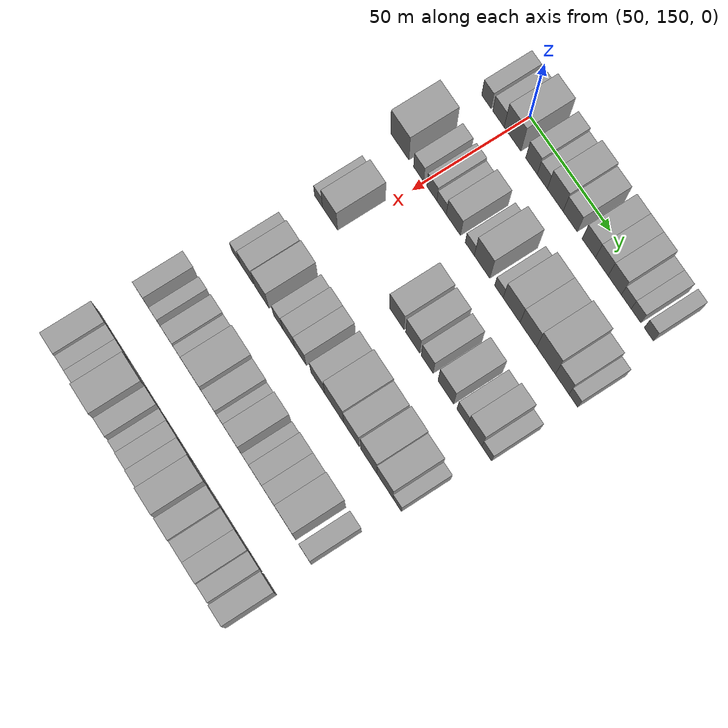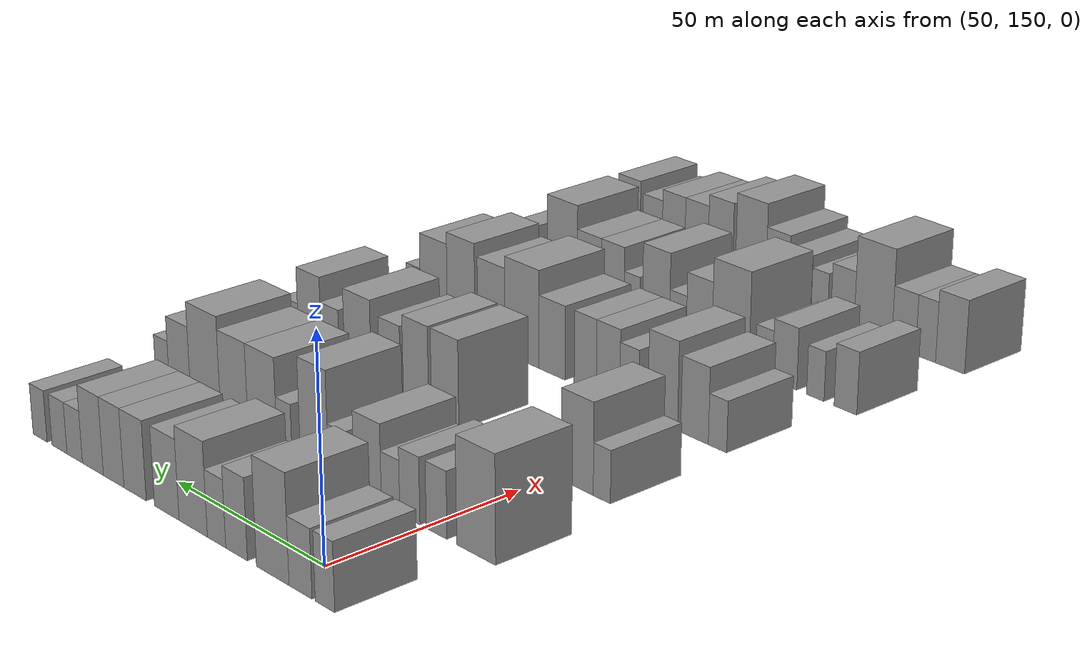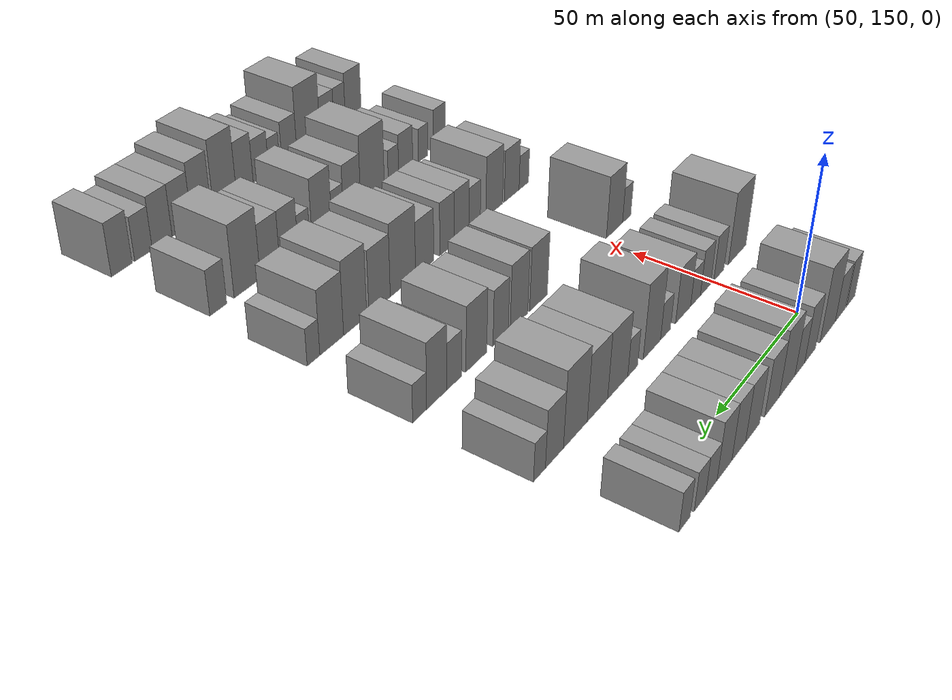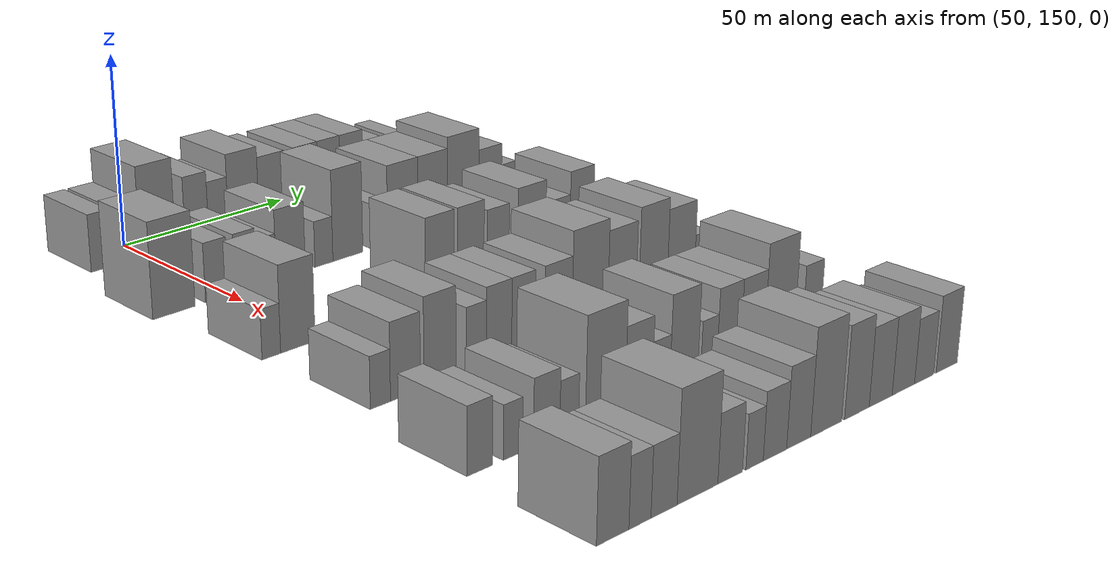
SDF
<sdf version="1.6">
 <world name="default">
  <model name="building_68">
   <static>1</static>
   <pose>50.0000 136.8755 0 0.000000 0.000000 0.000000</pose>
   <link name="link">
    <pose>0 0 7.50 0 0 0</pose>
    <collision name="collision"><geometry><box><size>20.0000 6.0686 15.0000</size></box></geometry></collision>
    <visual name="visual">
     <cast_shadows>0</cast_shadows>
     <geometry><box><size>20.0000 6.0686 15.0000</size></box></geometry>
     <material>
      <script>
       <uri>model://grey_wall/materials/scripts</uri>
       <uri>model://grey_wall/materials/textures</uri>
       <name>vrc/grey_wall</name>
      </script>
     </material>
    </visual>
   </link>
  </model>
  <model name="building_69">
   <static>1</static>
   <pose>50.0000 144.5583 0 0.000000 0.000000 0.000000</pose>
   <link name="link">
    <pose>0 0 7.50 0 0 0</pose>
    <collision name="collision"><geometry><box><size>20.0000 7.2969 15.0000</size></box></geometry></collision>
    <visual name="visual">
     <cast_shadows>0</cast_shadows>
     <geometry><box><size>20.0000 7.2969 15.0000</size></box></geometry>
     <material>
      <script>
       <uri>model://grey_wall/materials/scripts</uri>
       <uri>model://grey_wall/materials/textures</uri>
       <name>vrc/grey_wall</name>
      </script>
     </material>
    </visual>
   </link>
  </model>
  <model name="building_70">
   <static>1</static>
   <pose>50.0000 153.5086 0 0.000000 0.000000 0.000000</pose>
   <link name="link">
    <pose>0 0 12.00 0 0 0</pose>
    <collision name="collision"><geometry><box><size>20.0000 10.6038 24.0000</size></box></geometry></collision>
    <visual name="visual">
     <cast_shadows>0</cast_shadows>
     <geometry><box><size>20.0000 10.6038 24.0000</size></box></geometry>
     <material>
      <script>
       <uri>model://grey_wall/materials/scripts</uri>
       <uri>model://grey_wall/materials/textures</uri>
       <name>vrc/grey_wall</name>
      </script>
     </material>
    </visual>
   </link>
  </model>
  <model name="building_71">
   <static>1</static>
   <pose>50.0000 165.4371 0 0.000000 0.000000 0.000000</pose>
   <link name="link">
    <pose>0 0 9.00 0 0 0</pose>
    <collision name="collision"><geometry><box><size>20.0000 7.2532 18.0000</size></box></geometry></collision>
    <visual name="visual">
     <cast_shadows>0</cast_shadows>
     <geometry><box><size>20.0000 7.2532 18.0000</size></box></geometry>
     <material>
      <script>
       <uri>model://grey_wall/materials/scripts</uri>
       <uri>model://grey_wall/materials/textures</uri>
       <name>vrc/grey_wall</name>
      </script>
     </material>
    </visual>
   </link>
  </model>
  <model name="building_72">
   <static>1</static>
   <pose>50.0000 172.2063 0 0.000000 0.000000 0.000000</pose>
   <link name="link">
    <pose>0 0 7.50 0 0 0</pose>
    <collision name="collision"><geometry><box><size>20.0000 6.2853 15.0000</size></box></geometry></collision>
    <visual name="visual">
     <cast_shadows>0</cast_shadows>
     <geometry><box><size>20.0000 6.2853 15.0000</size></box></geometry>
     <material>
      <script>
       <uri>model://grey_wall/materials/scripts</uri>
       <uri>model://grey_wall/materials/textures</uri>
       <name>vrc/grey_wall</name>
      </script>
     </material>
    </visual>
   </link>
  </model>
  <model name="building_73">
   <static>1</static>
   <pose>50.0000 180.2846 0 0.000000 0.000000 0.000000</pose>
   <link name="link">
    <pose>0 0 10.50 0 0 0</pose>
    <collision name="collision"><geometry><box><size>20.0000 9.8712 21.0000</size></box></geometry></collision>
    <visual name="visual">
     <cast_shadows>0</cast_shadows>
     <geometry><box><size>20.0000 9.8712 21.0000</size></box></geometry>
     <material>
      <script>
       <uri>model://grey_wall/materials/scripts</uri>
       <uri>model://grey_wall/materials/textures</uri>
       <name>vrc/grey_wall</name>
      </script>
     </material>
    </visual>
   </link>
  </model>
  <model name="building_74">
   <static>1</static>
   <pose>50.0000 189.6203 0 0.000000 0.000000 0.000000</pose>
   <link name="link">
    <pose>0 0 9.00 0 0 0</pose>
    <collision name="collision"><geometry><box><size>20.0000 8.8002 18.0000</size></box></geometry></collision>
    <visual name="visual">
     <cast_shadows>0</cast_shadows>
     <geometry><box><size>20.0000 8.8002 18.0000</size></box></geometry>
     <material>
      <script>
       <uri>model://grey_wall/materials/scripts</uri>
       <uri>model://grey_wall/materials/textures</uri>
       <name>vrc/grey_wall</name>
      </script>
     </material>
    </visual>
   </link>
  </model>
  <model name="building_75">
   <static>1</static>
   <pose>50.0000 201.1195 0 0.000000 0.000000 0.000000</pose>
   <link name="link">
    <pose>0 0 9.00 0 0 0</pose>
    <collision name="collision"><geometry><box><size>20.0000 8.1983 18.0000</size></box></geometry></collision>
    <visual name="visual">
     <cast_shadows>0</cast_shadows>
     <geometry><box><size>20.0000 8.1983 18.0000</size></box></geometry>
     <material>
      <script>
       <uri>model://grey_wall/materials/scripts</uri>
       <uri>model://grey_wall/materials/textures</uri>
       <name>vrc/grey_wall</name>
      </script>
     </material>
    </visual>
   </link>
  </model>
  <model name="building_76">
   <static>1</static>
   <pose>50.0000 209.0803 0 0.000000 0.000000 0.000000</pose>
   <link name="link">
    <pose>0 0 9.00 0 0 0</pose>
    <collision name="collision"><geometry><box><size>20.0000 7.7233 18.0000</size></box></geometry></collision>
    <visual name="visual">
     <cast_shadows>0</cast_shadows>
     <geometry><box><size>20.0000 7.7233 18.0000</size></box></geometry>
     <material>
      <script>
       <uri>model://grey_wall/materials/scripts</uri>
       <uri>model://grey_wall/materials/textures</uri>
       <name>vrc/grey_wall</name>
      </script>
     </material>
    </visual>
   </link>
  </model>
  <model name="building_77">
   <static>1</static>
   <pose>50.0000 216.9637 0 0.000000 0.000000 0.000000</pose>
   <link name="link">
    <pose>0 0 9.00 0 0 0</pose>
    <collision name="collision"><geometry><box><size>20.0000 8.0435 18.0000</size></box></geometry></collision>
    <visual name="visual">
     <cast_shadows>0</cast_shadows>
     <geometry><box><size>20.0000 8.0435 18.0000</size></box></geometry>
     <material>
      <script>
       <uri>model://grey_wall/materials/scripts</uri>
       <uri>model://grey_wall/materials/textures</uri>
       <name>vrc/grey_wall</name>
      </script>
     </material>
    </visual>
   </link>
  </model>
  <model name="building_78">
   <static>1</static>
   <pose>50.0000 223.9829 0 0.000000 0.000000 0.000000</pose>
   <link name="link">
    <pose>0 0 6.00 0 0 0</pose>
    <collision name="collision"><geometry><box><size>20.0000 5.9948 12.0000</size></box></geometry></collision>
    <visual name="visual">
     <cast_shadows>0</cast_shadows>
     <geometry><box><size>20.0000 5.9948 12.0000</size></box></geometry>
     <material>
      <script>
       <uri>model://grey_wall/materials/scripts</uri>
       <uri>model://grey_wall/materials/textures</uri>
       <name>vrc/grey_wall</name>
      </script>
     </material>
    </visual>
   </link>
  </model>
  <model name="building_79">
   <static>1</static>
   <pose>50.0000 229.9279 0 0.000000 0.000000 0.000000</pose>
   <link name="link">
    <pose>0 0 6.00 0 0 0</pose>
    <collision name="collision"><geometry><box><size>20.0000 5.8952 12.0000</size></box></geometry></collision>
    <visual name="visual">
     <cast_shadows>0</cast_shadows>
     <geometry><box><size>20.0000 5.8952 12.0000</size></box></geometry>
     <material>
      <script>
       <uri>model://grey_wall/materials/scripts</uri>
       <uri>model://grey_wall/materials/textures</uri>
       <name>vrc/grey_wall</name>
      </script>
     </material>
    </visual>
   </link>
  </model>
  <model name="building_80">
   <static>1</static>
   <pose>50.0000 237.6682 0 0.000000 0.000000 0.000000</pose>
   <link name="link">
    <pose>0 0 6.00 0 0 0</pose>
    <collision name="collision"><geometry><box><size>20.0000 5.5854 12.0000</size></box></geometry></collision>
    <visual name="visual">
     <cast_shadows>0</cast_shadows>
     <geometry><box><size>20.0000 5.5854 12.0000</size></box></geometry>
     <material>
      <script>
       <uri>model://grey_wall/materials/scripts</uri>
       <uri>model://grey_wall/materials/textures</uri>
       <name>vrc/grey_wall</name>
      </script>
     </material>
    </visual>
   </link>
  </model>
  <model name="building_193">
   <static>1</static>
   <pose>85.0000 134.0909 0 0.000000 0.000000 0.000000</pose>
   <link name="link">
    <pose>0 0 12.00 0 0 0</pose>
    <collision name="collision"><geometry><box><size>20.0000 11.8184 24.0000</size></box></geometry></collision>
    <visual name="visual">
     <cast_shadows>0</cast_shadows>
     <geometry><box><size>20.0000 11.8184 24.0000</size></box></geometry>
     <material>
      <script>
       <uri>model://grey_wall/materials/scripts</uri>
       <uri>model://grey_wall/materials/textures</uri>
       <name>vrc/grey_wall</name>
      </script>
     </material>
    </visual>
   </link>
  </model>
  <model name="building_194">
   <static>1</static>
   <pose>85.0000 146.2504 0 0.000000 0.000000 0.000000</pose>
   <link name="link">
    <pose>0 0 7.50 0 0 0</pose>
    <collision name="collision"><geometry><box><size>20.0000 6.5005 15.0000</size></box></geometry></collision>
    <visual name="visual">
     <cast_shadows>0</cast_shadows>
     <geometry><box><size>20.0000 6.5005 15.0000</size></box></geometry>
     <material>
      <script>
       <uri>model://grey_wall/materials/scripts</uri>
       <uri>model://grey_wall/materials/textures</uri>
       <name>vrc/grey_wall</name>
      </script>
     </material>
    </visual>
   </link>
  </model>
  <model name="building_195">
   <static>1</static>
   <pose>85.0000 154.7199 0 0.000000 0.000000 0.000000</pose>
   <link name="link">
    <pose>0 0 7.50 0 0 0</pose>
    <collision name="collision"><geometry><box><size>20.0000 6.4386 15.0000</size></box></geometry></collision>
    <visual name="visual">
     <cast_shadows>0</cast_shadows>
     <geometry><box><size>20.0000 6.4386 15.0000</size></box></geometry>
     <material>
      <script>
       <uri>model://grey_wall/materials/scripts</uri>
       <uri>model://grey_wall/materials/textures</uri>
       <name>vrc/grey_wall</name>
      </script>
     </material>
    </visual>
   </link>
  </model>
  <model name="building_196">
   <static>1</static>
   <pose>85.0000 160.9288 0 0.000000 0.000000 0.000000</pose>
   <link name="link">
    <pose>0 0 6.00 0 0 0</pose>
    <collision name="collision"><geometry><box><size>20.0000 5.9792 12.0000</size></box></geometry></collision>
    <visual name="visual">
     <cast_shadows>0</cast_shadows>
     <geometry><box><size>20.0000 5.9792 12.0000</size></box></geometry>
     <material>
      <script>
       <uri>model://grey_wall/materials/scripts</uri>
       <uri>model://grey_wall/materials/textures</uri>
       <name>vrc/grey_wall</name>
      </script>
     </material>
    </visual>
   </link>
  </model>
  <model name="building_197">
   <static>1</static>
   <pose>85.0000 168.4121 0 0.000000 0.000000 0.000000</pose>
   <link name="link">
    <pose>0 0 9.00 0 0 0</pose>
    <collision name="collision"><geometry><box><size>20.0000 8.9873 18.0000</size></box></geometry></collision>
    <visual name="visual">
     <cast_shadows>0</cast_shadows>
     <geometry><box><size>20.0000 8.9873 18.0000</size></box></geometry>
     <material>
      <script>
       <uri>model://grey_wall/materials/scripts</uri>
       <uri>model://grey_wall/materials/textures</uri>
       <name>vrc/grey_wall</name>
      </script>
     </material>
    </visual>
   </link>
  </model>
  <model name="building_198">
   <static>1</static>
   <pose>85.0000 178.7618 0 0.000000 0.000000 0.000000</pose>
   <link name="link">
    <pose>0 0 6.00 0 0 0</pose>
    <collision name="collision"><geometry><box><size>20.0000 5.7120 12.0000</size></box></geometry></collision>
    <visual name="visual">
     <cast_shadows>0</cast_shadows>
     <geometry><box><size>20.0000 5.7120 12.0000</size></box></geometry>
     <material>
      <script>
       <uri>model://grey_wall/materials/scripts</uri>
       <uri>model://grey_wall/materials/textures</uri>
       <name>vrc/grey_wall</name>
      </script>
     </material>
    </visual>
   </link>
  </model>
  <model name="building_199">
   <static>1</static>
   <pose>85.0000 186.4769 0 0.000000 0.000000 0.000000</pose>
   <link name="link">
    <pose>0 0 12.00 0 0 0</pose>
    <collision name="collision"><geometry><box><size>20.0000 9.7182 24.0000</size></box></geometry></collision>
    <visual name="visual">
     <cast_shadows>0</cast_shadows>
     <geometry><box><size>20.0000 9.7182 24.0000</size></box></geometry>
     <material>
      <script>
       <uri>model://grey_wall/materials/scripts</uri>
       <uri>model://grey_wall/materials/textures</uri>
       <name>vrc/grey_wall</name>
      </script>
     </material>
    </visual>
   </link>
  </model>
  <model name="building_200">
   <static>1</static>
   <pose>85.0000 196.9893 0 0.000000 0.000000 0.000000</pose>
   <link name="link">
    <pose>0 0 6.00 0 0 0</pose>
    <collision name="collision"><geometry><box><size>20.0000 5.3066 12.0000</size></box></geometry></collision>
    <visual name="visual">
     <cast_shadows>0</cast_shadows>
     <geometry><box><size>20.0000 5.3066 12.0000</size></box></geometry>
     <material>
      <script>
       <uri>model://grey_wall/materials/scripts</uri>
       <uri>model://grey_wall/materials/textures</uri>
       <name>vrc/grey_wall</name>
      </script>
     </material>
    </visual>
   </link>
  </model>
  <model name="building_201">
   <static>1</static>
   <pose>85.0000 204.8769 0 0.000000 0.000000 0.000000</pose>
   <link name="link">
    <pose>0 0 10.50 0 0 0</pose>
    <collision name="collision"><geometry><box><size>20.0000 10.4686 21.0000</size></box></geometry></collision>
    <visual name="visual">
     <cast_shadows>0</cast_shadows>
     <geometry><box><size>20.0000 10.4686 21.0000</size></box></geometry>
     <material>
      <script>
       <uri>model://grey_wall/materials/scripts</uri>
       <uri>model://grey_wall/materials/textures</uri>
       <name>vrc/grey_wall</name>
      </script>
     </material>
    </visual>
   </link>
  </model>
  <model name="building_202">
   <static>1</static>
   <pose>85.0000 215.2196 0 0.000000 0.000000 0.000000</pose>
   <link name="link">
    <pose>0 0 10.50 0 0 0</pose>
    <collision name="collision"><geometry><box><size>20.0000 10.2167 21.0000</size></box></geometry></collision>
    <visual name="visual">
     <cast_shadows>0</cast_shadows>
     <geometry><box><size>20.0000 10.2167 21.0000</size></box></geometry>
     <material>
      <script>
       <uri>model://grey_wall/materials/scripts</uri>
       <uri>model://grey_wall/materials/textures</uri>
       <name>vrc/grey_wall</name>
      </script>
     </material>
    </visual>
   </link>
  </model>
  <model name="building_203">
   <static>1</static>
   <pose>85.0000 226.0204 0 0.000000 0.000000 0.000000</pose>
   <link name="link">
    <pose>0 0 12.00 0 0 0</pose>
    <collision name="collision"><geometry><box><size>20.0000 11.3850 24.0000</size></box></geometry></collision>
    <visual name="visual">
     <cast_shadows>0</cast_shadows>
     <geometry><box><size>20.0000 11.3850 24.0000</size></box></geometry>
     <material>
      <script>
       <uri>model://grey_wall/materials/scripts</uri>
       <uri>model://grey_wall/materials/textures</uri>
       <name>vrc/grey_wall</name>
      </script>
     </material>
    </visual>
   </link>
  </model>
  <model name="building_204">
   <static>1</static>
   <pose>85.0000 235.8639 0 0.000000 0.000000 0.000000</pose>
   <link name="link">
    <pose>0 0 9.00 0 0 0</pose>
    <collision name="collision"><geometry><box><size>20.0000 8.3018 18.0000</size></box></geometry></collision>
    <visual name="visual">
     <cast_shadows>0</cast_shadows>
     <geometry><box><size>20.0000 8.3018 18.0000</size></box></geometry>
     <material>
      <script>
       <uri>model://grey_wall/materials/scripts</uri>
       <uri>model://grey_wall/materials/textures</uri>
       <name>vrc/grey_wall</name>
      </script>
     </material>
    </visual>
   </link>
  </model>
  <model name="building_205">
   <static>1</static>
   <pose>85.0000 242.6818 0 0.000000 0.000000 0.000000</pose>
   <link name="link">
    <pose>0 0 6.00 0 0 0</pose>
    <collision name="collision"><geometry><box><size>20.0000 5.3340 12.0000</size></box></geometry></collision>
    <visual name="visual">
     <cast_shadows>0</cast_shadows>
     <geometry><box><size>20.0000 5.3340 12.0000</size></box></geometry>
     <material>
      <script>
       <uri>model://grey_wall/materials/scripts</uri>
       <uri>model://grey_wall/materials/textures</uri>
       <name>vrc/grey_wall</name>
      </script>
     </material>
    </visual>
   </link>
  </model>
  <model name="building_317">
   <static>1</static>
   <pose>120.0000 135.6257 0 0.000000 0.000000 0.000000</pose>
   <link name="link">
    <pose>0 0 6.00 0 0 0</pose>
    <collision name="collision"><geometry><box><size>20.0000 5.1600 12.0000</size></box></geometry></collision>
    <visual name="visual">
     <cast_shadows>0</cast_shadows>
     <geometry><box><size>20.0000 5.1600 12.0000</size></box></geometry>
     <material>
      <script>
       <uri>model://grey_wall/materials/scripts</uri>
       <uri>model://grey_wall/materials/textures</uri>
       <name>vrc/grey_wall</name>
      </script>
     </material>
    </visual>
   </link>
  </model>
  <model name="building_318">
   <static>1</static>
   <pose>120.0000 143.0825 0 0.000000 0.000000 0.000000</pose>
   <link name="link">
    <pose>0 0 10.50 0 0 0</pose>
    <collision name="collision"><geometry><box><size>20.0000 9.7536 21.0000</size></box></geometry></collision>
    <visual name="visual">
     <cast_shadows>0</cast_shadows>
     <geometry><box><size>20.0000 9.7536 21.0000</size></box></geometry>
     <material>
      <script>
       <uri>model://grey_wall/materials/scripts</uri>
       <uri>model://grey_wall/materials/textures</uri>
       <name>vrc/grey_wall</name>
      </script>
     </material>
    </visual>
   </link>
  </model>
  <model name="building_319">
   <static>1</static>
   <pose>120.0000 185.8170 0 0.000000 0.000000 0.000000</pose>
   <link name="link">
    <pose>0 0 10.50 0 0 0</pose>
    <collision name="collision"><geometry><box><size>20.0000 9.2385 21.0000</size></box></geometry></collision>
    <visual name="visual">
     <cast_shadows>0</cast_shadows>
     <geometry><box><size>20.0000 9.2385 21.0000</size></box></geometry>
     <material>
      <script>
       <uri>model://grey_wall/materials/scripts</uri>
       <uri>model://grey_wall/materials/textures</uri>
       <name>vrc/grey_wall</name>
      </script>
     </material>
    </visual>
   </link>
  </model>
  <model name="building_320">
   <static>1</static>
   <pose>120.0000 195.8365 0 0.000000 0.000000 0.000000</pose>
   <link name="link">
    <pose>0 0 10.50 0 0 0</pose>
    <collision name="collision"><geometry><box><size>20.0000 8.8005 21.0000</size></box></geometry></collision>
    <visual name="visual">
     <cast_shadows>0</cast_shadows>
     <geometry><box><size>20.0000 8.8005 21.0000</size></box></geometry>
     <material>
      <script>
       <uri>model://grey_wall/materials/scripts</uri>
       <uri>model://grey_wall/materials/textures</uri>
       <name>vrc/grey_wall</name>
      </script>
     </material>
    </visual>
   </link>
  </model>
  <model name="building_321">
   <static>1</static>
   <pose>120.0000 204.9454 0 0.000000 0.000000 0.000000</pose>
   <link name="link">
    <pose>0 0 9.00 0 0 0</pose>
    <collision name="collision"><geometry><box><size>20.0000 7.4174 18.0000</size></box></geometry></collision>
    <visual name="visual">
     <cast_shadows>0</cast_shadows>
     <geometry><box><size>20.0000 7.4174 18.0000</size></box></geometry>
     <material>
      <script>
       <uri>model://grey_wall/materials/scripts</uri>
       <uri>model://grey_wall/materials/textures</uri>
       <name>vrc/grey_wall</name>
      </script>
     </material>
    </visual>
   </link>
  </model>
  <model name="building_322">
   <static>1</static>
   <pose>120.0000 216.5211 0 0.000000 0.000000 0.000000</pose>
   <link name="link">
    <pose>0 0 10.50 0 0 0</pose>
    <collision name="collision"><geometry><box><size>20.0000 9.7340 21.0000</size></box></geometry></collision>
    <visual name="visual">
     <cast_shadows>0</cast_shadows>
     <geometry><box><size>20.0000 9.7340 21.0000</size></box></geometry>
     <material>
      <script>
       <uri>model://grey_wall/materials/scripts</uri>
       <uri>model://grey_wall/materials/textures</uri>
       <name>vrc/grey_wall</name>
      </script>
     </material>
    </visual>
   </link>
  </model>
  <model name="building_323">
   <static>1</static>
   <pose>120.0000 226.7242 0 0.000000 0.000000 0.000000</pose>
   <link name="link">
    <pose>0 0 7.50 0 0 0</pose>
    <collision name="collision"><geometry><box><size>20.0000 6.6721 15.0000</size></box></geometry></collision>
    <visual name="visual">
     <cast_shadows>0</cast_shadows>
     <geometry><box><size>20.0000 6.6721 15.0000</size></box></geometry>
     <material>
      <script>
       <uri>model://grey_wall/materials/scripts</uri>
       <uri>model://grey_wall/materials/textures</uri>
       <name>vrc/grey_wall</name>
      </script>
     </material>
    </visual>
   </link>
  </model>
  <model name="building_324">
   <static>1</static>
   <pose>120.0000 234.4064 0 0.000000 0.000000 0.000000</pose>
   <link name="link">
    <pose>0 0 10.50 0 0 0</pose>
    <collision name="collision"><geometry><box><size>20.0000 8.6924 21.0000</size></box></geometry></collision>
    <visual name="visual">
     <cast_shadows>0</cast_shadows>
     <geometry><box><size>20.0000 8.6924 21.0000</size></box></geometry>
     <material>
      <script>
       <uri>model://grey_wall/materials/scripts</uri>
       <uri>model://grey_wall/materials/textures</uri>
       <name>vrc/grey_wall</name>
      </script>
     </material>
    </visual>
   </link>
  </model>
  <model name="building_325">
   <static>1</static>
   <pose>120.0000 241.7176 0 0.000000 0.000000 0.000000</pose>
   <link name="link">
    <pose>0 0 6.00 0 0 0</pose>
    <collision name="collision"><geometry><box><size>20.0000 5.9299 12.0000</size></box></geometry></collision>
    <visual name="visual">
     <cast_shadows>0</cast_shadows>
     <geometry><box><size>20.0000 5.9299 12.0000</size></box></geometry>
     <material>
      <script>
       <uri>model://grey_wall/materials/scripts</uri>
       <uri>model://grey_wall/materials/textures</uri>
       <name>vrc/grey_wall</name>
      </script>
     </material>
    </visual>
   </link>
  </model>
  <model name="building_441">
   <static>1</static>
   <pose>155.0000 137.2264 0 0.000000 0.000000 0.000000</pose>
   <link name="link">
    <pose>0 0 6.00 0 0 0</pose>
    <collision name="collision"><geometry><box><size>20.0000 5.5330 12.0000</size></box></geometry></collision>
    <visual name="visual">
     <cast_shadows>0</cast_shadows>
     <geometry><box><size>20.0000 5.5330 12.0000</size></box></geometry>
     <material>
      <script>
       <uri>model://grey_wall/materials/scripts</uri>
       <uri>model://grey_wall/materials/textures</uri>
       <name>vrc/grey_wall</name>
      </script>
     </material>
    </visual>
   </link>
  </model>
  <model name="building_442">
   <static>1</static>
   <pose>155.0000 144.1922 0 0.000000 0.000000 0.000000</pose>
   <link name="link">
    <pose>0 0 9.00 0 0 0</pose>
    <collision name="collision"><geometry><box><size>20.0000 8.3985 18.0000</size></box></geometry></collision>
    <visual name="visual">
     <cast_shadows>0</cast_shadows>
     <geometry><box><size>20.0000 8.3985 18.0000</size></box></geometry>
     <material>
      <script>
       <uri>model://grey_wall/materials/scripts</uri>
       <uri>model://grey_wall/materials/textures</uri>
       <name>vrc/grey_wall</name>
      </script>
     </material>
    </visual>
   </link>
  </model>
  <model name="building_443">
   <static>1</static>
   <pose>155.0000 154.0105 0 0.000000 0.000000 0.000000</pose>
   <link name="link">
    <pose>0 0 10.50 0 0 0</pose>
    <collision name="collision"><geometry><box><size>20.0000 9.2381 21.0000</size></box></geometry></collision>
    <visual name="visual">
     <cast_shadows>0</cast_shadows>
     <geometry><box><size>20.0000 9.2381 21.0000</size></box></geometry>
     <material>
      <script>
       <uri>model://grey_wall/materials/scripts</uri>
       <uri>model://grey_wall/materials/textures</uri>
       <name>vrc/grey_wall</name>
      </script>
     </material>
    </visual>
   </link>
  </model>
  <model name="building_444">
   <static>1</static>
   <pose>155.0000 164.6362 0 0.000000 0.000000 0.000000</pose>
   <link name="link">
    <pose>0 0 7.50 0 0 0</pose>
    <collision name="collision"><geometry><box><size>20.0000 6.0134 15.0000</size></box></geometry></collision>
    <visual name="visual">
     <cast_shadows>0</cast_shadows>
     <geometry><box><size>20.0000 6.0134 15.0000</size></box></geometry>
     <material>
      <script>
       <uri>model://grey_wall/materials/scripts</uri>
       <uri>model://grey_wall/materials/textures</uri>
       <name>vrc/grey_wall</name>
      </script>
     </material>
    </visual>
   </link>
  </model>
  <model name="building_445">
   <static>1</static>
   <pose>155.0000 171.5011 0 0.000000 0.000000 0.000000</pose>
   <link name="link">
    <pose>0 0 9.00 0 0 0</pose>
    <collision name="collision"><geometry><box><size>20.0000 7.7163 18.0000</size></box></geometry></collision>
    <visual name="visual">
     <cast_shadows>0</cast_shadows>
     <geometry><box><size>20.0000 7.7163 18.0000</size></box></geometry>
     <material>
      <script>
       <uri>model://grey_wall/materials/scripts</uri>
       <uri>model://grey_wall/materials/textures</uri>
       <name>vrc/grey_wall</name>
      </script>
     </material>
    </visual>
   </link>
  </model>
  <model name="building_446">
   <static>1</static>
   <pose>155.0000 179.0129 0 0.000000 0.000000 0.000000</pose>
   <link name="link">
    <pose>0 0 9.00 0 0 0</pose>
    <collision name="collision"><geometry><box><size>20.0000 7.3074 18.0000</size></box></geometry></collision>
    <visual name="visual">
     <cast_shadows>0</cast_shadows>
     <geometry><box><size>20.0000 7.3074 18.0000</size></box></geometry>
     <material>
      <script>
       <uri>model://grey_wall/materials/scripts</uri>
       <uri>model://grey_wall/materials/textures</uri>
       <name>vrc/grey_wall</name>
      </script>
     </material>
    </visual>
   </link>
  </model>
  <model name="building_447">
   <static>1</static>
   <pose>155.0000 190.1077 0 0.000000 0.000000 0.000000</pose>
   <link name="link">
    <pose>0 0 9.00 0 0 0</pose>
    <collision name="collision"><geometry><box><size>20.0000 8.8821 18.0000</size></box></geometry></collision>
    <visual name="visual">
     <cast_shadows>0</cast_shadows>
     <geometry><box><size>20.0000 8.8821 18.0000</size></box></geometry>
     <material>
      <script>
       <uri>model://grey_wall/materials/scripts</uri>
       <uri>model://grey_wall/materials/textures</uri>
       <name>vrc/grey_wall</name>
      </script>
     </material>
    </visual>
   </link>
  </model>
  <model name="building_448">
   <static>1</static>
   <pose>155.0000 200.5091 0 0.000000 0.000000 0.000000</pose>
   <link name="link">
    <pose>0 0 12.00 0 0 0</pose>
    <collision name="collision"><geometry><box><size>20.0000 11.9207 24.0000</size></box></geometry></collision>
    <visual name="visual">
     <cast_shadows>0</cast_shadows>
     <geometry><box><size>20.0000 11.9207 24.0000</size></box></geometry>
     <material>
      <script>
       <uri>model://grey_wall/materials/scripts</uri>
       <uri>model://grey_wall/materials/textures</uri>
       <name>vrc/grey_wall</name>
      </script>
     </material>
    </visual>
   </link>
  </model>
  <model name="building_449">
   <static>1</static>
   <pose>155.0000 211.3042 0 0.000000 0.000000 0.000000</pose>
   <link name="link">
    <pose>0 0 10.50 0 0 0</pose>
    <collision name="collision"><geometry><box><size>20.0000 9.6696 21.0000</size></box></geometry></collision>
    <visual name="visual">
     <cast_shadows>0</cast_shadows>
     <geometry><box><size>20.0000 9.6696 21.0000</size></box></geometry>
     <material>
      <script>
       <uri>model://grey_wall/materials/scripts</uri>
       <uri>model://grey_wall/materials/textures</uri>
       <name>vrc/grey_wall</name>
      </script>
     </material>
    </visual>
   </link>
  </model>
  <model name="building_450">
   <static>1</static>
   <pose>155.0000 222.1676 0 0.000000 0.000000 0.000000</pose>
   <link name="link">
    <pose>0 0 12.00 0 0 0</pose>
    <collision name="collision"><geometry><box><size>20.0000 10.0573 24.0000</size></box></geometry></collision>
    <visual name="visual">
     <cast_shadows>0</cast_shadows>
     <geometry><box><size>20.0000 10.0573 24.0000</size></box></geometry>
     <material>
      <script>
       <uri>model://grey_wall/materials/scripts</uri>
       <uri>model://grey_wall/materials/textures</uri>
       <name>vrc/grey_wall</name>
      </script>
     </material>
    </visual>
   </link>
  </model>
  <model name="building_451">
   <static>1</static>
   <pose>155.0000 232.1949 0 0.000000 0.000000 0.000000</pose>
   <link name="link">
    <pose>0 0 10.50 0 0 0</pose>
    <collision name="collision"><geometry><box><size>20.0000 9.9973 21.0000</size></box></geometry></collision>
    <visual name="visual">
     <cast_shadows>0</cast_shadows>
     <geometry><box><size>20.0000 9.9973 21.0000</size></box></geometry>
     <material>
      <script>
       <uri>model://grey_wall/materials/scripts</uri>
       <uri>model://grey_wall/materials/textures</uri>
       <name>vrc/grey_wall</name>
      </script>
     </material>
    </visual>
   </link>
  </model>
  <model name="building_452">
   <static>1</static>
   <pose>155.0000 239.7919 0 0.000000 0.000000 0.000000</pose>
   <link name="link">
    <pose>0 0 6.00 0 0 0</pose>
    <collision name="collision"><geometry><box><size>20.0000 5.1967 12.0000</size></box></geometry></collision>
    <visual name="visual">
     <cast_shadows>0</cast_shadows>
     <geometry><box><size>20.0000 5.1967 12.0000</size></box></geometry>
     <material>
      <script>
       <uri>model://grey_wall/materials/scripts</uri>
       <uri>model://grey_wall/materials/textures</uri>
       <name>vrc/grey_wall</name>
      </script>
     </material>
    </visual>
   </link>
  </model>
  <model name="building_563">
   <static>1</static>
   <pose>190.0000 132.5205 0 0.000000 0.000000 0.000000</pose>
   <link name="link">
    <pose>0 0 7.50 0 0 0</pose>
    <collision name="collision"><geometry><box><size>20.0000 6.7337 15.0000</size></box></geometry></collision>
    <visual name="visual">
     <cast_shadows>0</cast_shadows>
     <geometry><box><size>20.0000 6.7337 15.0000</size></box></geometry>
     <material>
      <script>
       <uri>model://grey_wall/materials/scripts</uri>
       <uri>model://grey_wall/materials/textures</uri>
       <name>vrc/grey_wall</name>
      </script>
     </material>
    </visual>
   </link>
  </model>
  <model name="building_564">
   <static>1</static>
   <pose>190.0000 141.5327 0 0.000000 0.000000 0.000000</pose>
   <link name="link">
    <pose>0 0 6.00 0 0 0</pose>
    <collision name="collision"><geometry><box><size>20.0000 5.2908 12.0000</size></box></geometry></collision>
    <visual name="visual">
     <cast_shadows>0</cast_shadows>
     <geometry><box><size>20.0000 5.2908 12.0000</size></box></geometry>
     <material>
      <script>
       <uri>model://grey_wall/materials/scripts</uri>
       <uri>model://grey_wall/materials/textures</uri>
       <name>vrc/grey_wall</name>
      </script>
     </material>
    </visual>
   </link>
  </model>
  <model name="building_565">
   <static>1</static>
   <pose>190.0000 150.9225 0 0.000000 0.000000 0.000000</pose>
   <link name="link">
    <pose>0 0 7.50 0 0 0</pose>
    <collision name="collision"><geometry><box><size>20.0000 7.4887 15.0000</size></box></geometry></collision>
    <visual name="visual">
     <cast_shadows>0</cast_shadows>
     <geometry><box><size>20.0000 7.4887 15.0000</size></box></geometry>
     <material>
      <script>
       <uri>model://grey_wall/materials/scripts</uri>
       <uri>model://grey_wall/materials/textures</uri>
       <name>vrc/grey_wall</name>
      </script>
     </material>
    </visual>
   </link>
  </model>
  <model name="building_566">
   <static>1</static>
   <pose>190.0000 157.3862 0 0.000000 0.000000 0.000000</pose>
   <link name="link">
    <pose>0 0 6.00 0 0 0</pose>
    <collision name="collision"><geometry><box><size>20.0000 5.4387 12.0000</size></box></geometry></collision>
    <visual name="visual">
     <cast_shadows>0</cast_shadows>
     <geometry><box><size>20.0000 5.4387 12.0000</size></box></geometry>
     <material>
      <script>
       <uri>model://grey_wall/materials/scripts</uri>
       <uri>model://grey_wall/materials/textures</uri>
       <name>vrc/grey_wall</name>
      </script>
     </material>
    </visual>
   </link>
  </model>
  <model name="building_567">
   <static>1</static>
   <pose>190.0000 168.0736 0 0.000000 0.000000 0.000000</pose>
   <link name="link">
    <pose>0 0 12.00 0 0 0</pose>
    <collision name="collision"><geometry><box><size>20.0000 11.9360 24.0000</size></box></geometry></collision>
    <visual name="visual">
     <cast_shadows>0</cast_shadows>
     <geometry><box><size>20.0000 11.9360 24.0000</size></box></geometry>
     <material>
      <script>
       <uri>model://grey_wall/materials/scripts</uri>
       <uri>model://grey_wall/materials/textures</uri>
       <name>vrc/grey_wall</name>
      </script>
     </material>
    </visual>
   </link>
  </model>
  <model name="building_568">
   <static>1</static>
   <pose>190.0000 178.2689 0 0.000000 0.000000 0.000000</pose>
   <link name="link">
    <pose>0 0 9.00 0 0 0</pose>
    <collision name="collision"><geometry><box><size>20.0000 8.4548 18.0000</size></box></geometry></collision>
    <visual name="visual">
     <cast_shadows>0</cast_shadows>
     <geometry><box><size>20.0000 8.4548 18.0000</size></box></geometry>
     <material>
      <script>
       <uri>model://grey_wall/materials/scripts</uri>
       <uri>model://grey_wall/materials/textures</uri>
       <name>vrc/grey_wall</name>
      </script>
     </material>
    </visual>
   </link>
  </model>
  <model name="building_569">
   <static>1</static>
   <pose>190.0000 185.3020 0 0.000000 0.000000 0.000000</pose>
   <link name="link">
    <pose>0 0 6.00 0 0 0</pose>
    <collision name="collision"><geometry><box><size>20.0000 5.6113 12.0000</size></box></geometry></collision>
    <visual name="visual">
     <cast_shadows>0</cast_shadows>
     <geometry><box><size>20.0000 5.6113 12.0000</size></box></geometry>
     <material>
      <script>
       <uri>model://grey_wall/materials/scripts</uri>
       <uri>model://grey_wall/materials/textures</uri>
       <name>vrc/grey_wall</name>
      </script>
     </material>
    </visual>
   </link>
  </model>
  <model name="building_570">
   <static>1</static>
   <pose>190.0000 192.6797 0 0.000000 0.000000 0.000000</pose>
   <link name="link">
    <pose>0 0 10.50 0 0 0</pose>
    <collision name="collision"><geometry><box><size>20.0000 9.1441 21.0000</size></box></geometry></collision>
    <visual name="visual">
     <cast_shadows>0</cast_shadows>
     <geometry><box><size>20.0000 9.1441 21.0000</size></box></geometry>
     <material>
      <script>
       <uri>model://grey_wall/materials/scripts</uri>
       <uri>model://grey_wall/materials/textures</uri>
       <name>vrc/grey_wall</name>
      </script>
     </material>
    </visual>
   </link>
  </model>
  <model name="building_571">
   <static>1</static>
   <pose>190.0000 200.9474 0 0.000000 0.000000 0.000000</pose>
   <link name="link">
    <pose>0 0 6.00 0 0 0</pose>
    <collision name="collision"><geometry><box><size>20.0000 5.3915 12.0000</size></box></geometry></collision>
    <visual name="visual">
     <cast_shadows>0</cast_shadows>
     <geometry><box><size>20.0000 5.3915 12.0000</size></box></geometry>
     <material>
      <script>
       <uri>model://grey_wall/materials/scripts</uri>
       <uri>model://grey_wall/materials/textures</uri>
       <name>vrc/grey_wall</name>
      </script>
     </material>
    </visual>
   </link>
  </model>
  <model name="building_572">
   <static>1</static>
   <pose>190.0000 207.6912 0 0.000000 0.000000 0.000000</pose>
   <link name="link">
    <pose>0 0 9.00 0 0 0</pose>
    <collision name="collision"><geometry><box><size>20.0000 8.0960 18.0000</size></box></geometry></collision>
    <visual name="visual">
     <cast_shadows>0</cast_shadows>
     <geometry><box><size>20.0000 8.0960 18.0000</size></box></geometry>
     <material>
      <script>
       <uri>model://grey_wall/materials/scripts</uri>
       <uri>model://grey_wall/materials/textures</uri>
       <name>vrc/grey_wall</name>
      </script>
     </material>
    </visual>
   </link>
  </model>
  <model name="building_573">
   <static>1</static>
   <pose>190.0000 215.9385 0 0.000000 0.000000 0.000000</pose>
   <link name="link">
    <pose>0 0 9.00 0 0 0</pose>
    <collision name="collision"><geometry><box><size>20.0000 8.3987 18.0000</size></box></geometry></collision>
    <visual name="visual">
     <cast_shadows>0</cast_shadows>
     <geometry><box><size>20.0000 8.3987 18.0000</size></box></geometry>
     <material>
      <script>
       <uri>model://grey_wall/materials/scripts</uri>
       <uri>model://grey_wall/materials/textures</uri>
       <name>vrc/grey_wall</name>
      </script>
     </material>
    </visual>
   </link>
  </model>
  <model name="building_574">
   <static>1</static>
   <pose>190.0000 225.6128 0 0.000000 0.000000 0.000000</pose>
   <link name="link">
    <pose>0 0 12.00 0 0 0</pose>
    <collision name="collision"><geometry><box><size>20.0000 10.9500 24.0000</size></box></geometry></collision>
    <visual name="visual">
     <cast_shadows>0</cast_shadows>
     <geometry><box><size>20.0000 10.9500 24.0000</size></box></geometry>
     <material>
      <script>
       <uri>model://grey_wall/materials/scripts</uri>
       <uri>model://grey_wall/materials/textures</uri>
       <name>vrc/grey_wall</name>
      </script>
     </material>
    </visual>
   </link>
  </model>
  <model name="building_575">
   <static>1</static>
   <pose>190.0000 237.4707 0 0.000000 0.000000 0.000000</pose>
   <link name="link">
    <pose>0 0 7.50 0 0 0</pose>
    <collision name="collision"><geometry><box><size>20.0000 6.7660 15.0000</size></box></geometry></collision>
    <visual name="visual">
     <cast_shadows>0</cast_shadows>
     <geometry><box><size>20.0000 6.7660 15.0000</size></box></geometry>
     <material>
      <script>
       <uri>model://grey_wall/materials/scripts</uri>
       <uri>model://grey_wall/materials/textures</uri>
       <name>vrc/grey_wall</name>
      </script>
     </material>
    </visual>
   </link>
  </model>
  <model name="building_694">
   <static>1</static>
   <pose>225.0000 132.4073 0 0.000000 0.000000 0.000000</pose>
   <link name="link">
    <pose>0 0 9.00 0 0 0</pose>
    <collision name="collision"><geometry><box><size>20.0000 8.6337 18.0000</size></box></geometry></collision>
    <visual name="visual">
     <cast_shadows>0</cast_shadows>
     <geometry><box><size>20.0000 8.6337 18.0000</size></box></geometry>
     <material>
      <script>
       <uri>model://grey_wall/materials/scripts</uri>
       <uri>model://grey_wall/materials/textures</uri>
       <name>vrc/grey_wall</name>
      </script>
     </material>
    </visual>
   </link>
  </model>
  <model name="building_695">
   <static>1</static>
   <pose>225.0000 139.7288 0 0.000000 0.000000 0.000000</pose>
   <link name="link">
    <pose>0 0 7.50 0 0 0</pose>
    <collision name="collision"><geometry><box><size>20.0000 6.0095 15.0000</size></box></geometry></collision>
    <visual name="visual">
     <cast_shadows>0</cast_shadows>
     <geometry><box><size>20.0000 6.0095 15.0000</size></box></geometry>
     <material>
      <script>
       <uri>model://grey_wall/materials/scripts</uri>
       <uri>model://grey_wall/materials/textures</uri>
       <name>vrc/grey_wall</name>
      </script>
     </material>
    </visual>
   </link>
  </model>
  <model name="building_696">
   <static>1</static>
   <pose>225.0000 146.3886 0 0.000000 0.000000 0.000000</pose>
   <link name="link">
    <pose>0 0 7.50 0 0 0</pose>
    <collision name="collision"><geometry><box><size>20.0000 7.3100 15.0000</size></box></geometry></collision>
    <visual name="visual">
     <cast_shadows>0</cast_shadows>
     <geometry><box><size>20.0000 7.3100 15.0000</size></box></geometry>
     <material>
      <script>
       <uri>model://grey_wall/materials/scripts</uri>
       <uri>model://grey_wall/materials/textures</uri>
       <name>vrc/grey_wall</name>
      </script>
     </material>
    </visual>
   </link>
  </model>
  <model name="building_697">
   <static>1</static>
   <pose>225.0000 155.9474 0 0.000000 0.000000 0.000000</pose>
   <link name="link">
    <pose>0 0 12.00 0 0 0</pose>
    <collision name="collision"><geometry><box><size>20.0000 11.8075 24.0000</size></box></geometry></collision>
    <visual name="visual">
     <cast_shadows>0</cast_shadows>
     <geometry><box><size>20.0000 11.8075 24.0000</size></box></geometry>
     <material>
      <script>
       <uri>model://grey_wall/materials/scripts</uri>
       <uri>model://grey_wall/materials/textures</uri>
       <name>vrc/grey_wall</name>
      </script>
     </material>
    </visual>
   </link>
  </model>
  <model name="building_698">
   <static>1</static>
   <pose>225.0000 165.5590 0 0.000000 0.000000 0.000000</pose>
   <link name="link">
    <pose>0 0 7.50 0 0 0</pose>
    <collision name="collision"><geometry><box><size>20.0000 7.4157 15.0000</size></box></geometry></collision>
    <visual name="visual">
     <cast_shadows>0</cast_shadows>
     <geometry><box><size>20.0000 7.4157 15.0000</size></box></geometry>
     <material>
      <script>
       <uri>model://grey_wall/materials/scripts</uri>
       <uri>model://grey_wall/materials/textures</uri>
       <name>vrc/grey_wall</name>
      </script>
     </material>
    </visual>
   </link>
  </model>
  <model name="building_699">
   <static>1</static>
   <pose>225.0000 172.9480 0 0.000000 0.000000 0.000000</pose>
   <link name="link">
    <pose>0 0 6.00 0 0 0</pose>
    <collision name="collision"><geometry><box><size>20.0000 5.3624 12.0000</size></box></geometry></collision>
    <visual name="visual">
     <cast_shadows>0</cast_shadows>
     <geometry><box><size>20.0000 5.3624 12.0000</size></box></geometry>
     <material>
      <script>
       <uri>model://grey_wall/materials/scripts</uri>
       <uri>model://grey_wall/materials/textures</uri>
       <name>vrc/grey_wall</name>
      </script>
     </material>
    </visual>
   </link>
  </model>
  <model name="building_700">
   <static>1</static>
   <pose>225.0000 179.3113 0 0.000000 0.000000 0.000000</pose>
   <link name="link">
    <pose>0 0 7.50 0 0 0</pose>
    <collision name="collision"><geometry><box><size>20.0000 7.3643 15.0000</size></box></geometry></collision>
    <visual name="visual">
     <cast_shadows>0</cast_shadows>
     <geometry><box><size>20.0000 7.3643 15.0000</size></box></geometry>
     <material>
      <script>
       <uri>model://grey_wall/materials/scripts</uri>
       <uri>model://grey_wall/materials/textures</uri>
       <name>vrc/grey_wall</name>
      </script>
     </material>
    </visual>
   </link>
  </model>
  <model name="building_701">
   <static>1</static>
   <pose>225.0000 186.8774 0 0.000000 0.000000 0.000000</pose>
   <link name="link">
    <pose>0 0 9.00 0 0 0</pose>
    <collision name="collision"><geometry><box><size>20.0000 7.7678 18.0000</size></box></geometry></collision>
    <visual name="visual">
     <cast_shadows>0</cast_shadows>
     <geometry><box><size>20.0000 7.7678 18.0000</size></box></geometry>
     <material>
      <script>
       <uri>model://grey_wall/materials/scripts</uri>
       <uri>model://grey_wall/materials/textures</uri>
       <name>vrc/grey_wall</name>
      </script>
     </material>
    </visual>
   </link>
  </model>
  <model name="building_702">
   <static>1</static>
   <pose>225.0000 195.9217 0 0.000000 0.000000 0.000000</pose>
   <link name="link">
    <pose>0 0 12.00 0 0 0</pose>
    <collision name="collision"><geometry><box><size>20.0000 10.3208 24.0000</size></box></geometry></collision>
    <visual name="visual">
     <cast_shadows>0</cast_shadows>
     <geometry><box><size>20.0000 10.3208 24.0000</size></box></geometry>
     <material>
      <script>
       <uri>model://grey_wall/materials/scripts</uri>
       <uri>model://grey_wall/materials/textures</uri>
       <name>vrc/grey_wall</name>
      </script>
     </material>
    </visual>
   </link>
  </model>
  <model name="building_703">
   <static>1</static>
   <pose>225.0000 206.3396 0 0.000000 0.000000 0.000000</pose>
   <link name="link">
    <pose>0 0 10.50 0 0 0</pose>
    <collision name="collision"><geometry><box><size>20.0000 8.5151 21.0000</size></box></geometry></collision>
    <visual name="visual">
     <cast_shadows>0</cast_shadows>
     <geometry><box><size>20.0000 8.5151 21.0000</size></box></geometry>
     <material>
      <script>
       <uri>model://grey_wall/materials/scripts</uri>
       <uri>model://grey_wall/materials/textures</uri>
       <name>vrc/grey_wall</name>
      </script>
     </material>
    </visual>
   </link>
  </model>
  <model name="building_704">
   <static>1</static>
   <pose>225.0000 214.6855 0 0.000000 0.000000 0.000000</pose>
   <link name="link">
    <pose>0 0 9.00 0 0 0</pose>
    <collision name="collision"><geometry><box><size>20.0000 8.1766 18.0000</size></box></geometry></collision>
    <visual name="visual">
     <cast_shadows>0</cast_shadows>
     <geometry><box><size>20.0000 8.1766 18.0000</size></box></geometry>
     <material>
      <script>
       <uri>model://grey_wall/materials/scripts</uri>
       <uri>model://grey_wall/materials/textures</uri>
       <name>vrc/grey_wall</name>
      </script>
     </material>
    </visual>
   </link>
  </model>
  <model name="building_705">
   <static>1</static>
   <pose>225.0000 222.8481 0 0.000000 0.000000 0.000000</pose>
   <link name="link">
    <pose>0 0 9.00 0 0 0</pose>
    <collision name="collision"><geometry><box><size>20.0000 8.1485 18.0000</size></box></geometry></collision>
    <visual name="visual">
     <cast_shadows>0</cast_shadows>
     <geometry><box><size>20.0000 8.1485 18.0000</size></box></geometry>
     <material>
      <script>
       <uri>model://grey_wall/materials/scripts</uri>
       <uri>model://grey_wall/materials/textures</uri>
       <name>vrc/grey_wall</name>
      </script>
     </material>
    </visual>
   </link>
  </model>
  <model name="building_706">
   <static>1</static>
   <pose>225.0000 230.4558 0 0.000000 0.000000 0.000000</pose>
   <link name="link">
    <pose>0 0 7.50 0 0 0</pose>
    <collision name="collision"><geometry><box><size>20.0000 7.0669 15.0000</size></box></geometry></collision>
    <visual name="visual">
     <cast_shadows>0</cast_shadows>
     <geometry><box><size>20.0000 7.0669 15.0000</size></box></geometry>
     <material>
      <script>
       <uri>model://grey_wall/materials/scripts</uri>
       <uri>model://grey_wall/materials/textures</uri>
       <name>vrc/grey_wall</name>
      </script>
     </material>
    </visual>
   </link>
  </model>
  <model name="building_707">
   <static>1</static>
   <pose>225.0000 239.0379 0 0.000000 0.000000 0.000000</pose>
   <link name="link">
    <pose>0 0 9.00 0 0 0</pose>
    <collision name="collision"><geometry><box><size>20.0000 8.0973 18.0000</size></box></geometry></collision>
    <visual name="visual">
     <cast_shadows>0</cast_shadows>
     <geometry><box><size>20.0000 8.0973 18.0000</size></box></geometry>
     <material>
      <script>
       <uri>model://grey_wall/materials/scripts</uri>
       <uri>model://grey_wall/materials/textures</uri>
       <name>vrc/grey_wall</name>
      </script>
     </material>
    </visual>
   </link>
  </model>
 </world>
</sdf>
